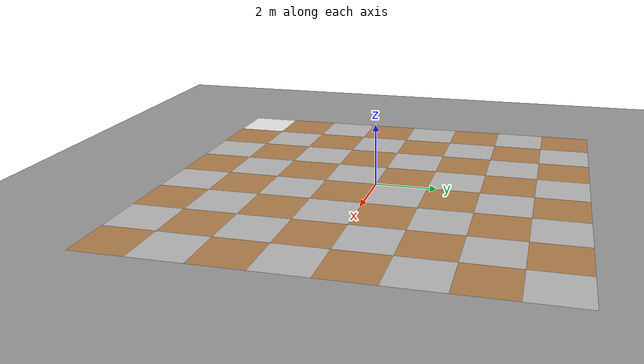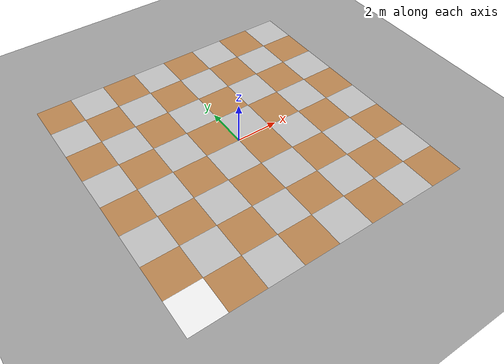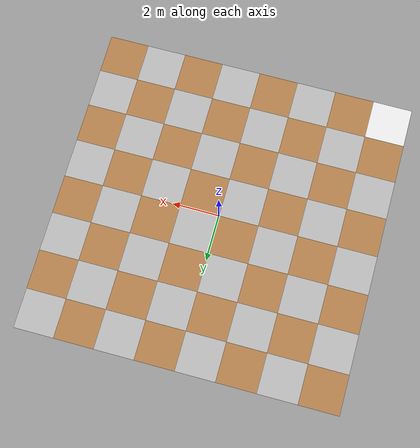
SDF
<sdf version="13">
 <world name="default">
  <scene><sky><clouds><speed>100</speed></clouds></sky><grid>false</grid></scene>
  <include><uri>model://groundPlaneWithChessBoardPattern</uri></include>
  <include><uri>model://sun</uri></include>
 </world>
</sdf>

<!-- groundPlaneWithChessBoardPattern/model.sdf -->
<sdf version="1.5">

<!-- GROUND PLANE START -->
  <model name="ground_plane">
    <static>true</static>
    <link name="ground_plane_link">
      <collision name="collision">
        <geometry>
          <plane>
            <normal>0 0 1</normal>
            <size>100 100</size>
          </plane>
        </geometry>
        <surface>
          <friction>
            <ode>
              <mu>100</mu>
              <mu2>50</mu2>
            </ode>
          </friction>
        </surface>
      </collision>
      <visual name="visual">
        <cast_shadows>false</cast_shadows>
        <geometry>
          <plane>
            <normal>0 0 1</normal>
            <size>100 100</size>
          </plane>
        </geometry>
        <material>
          <script>
            <uri>file://media/materials/scripts/gazebo.material</uri>
            <name>Gazebo/Grey</name>
          </script>
        </material>
      </visual>
    </link>
<!-- GROUND PLANE END -->

<!--CHESS BOARD PATTERN (COLUMN x=-5.90625) START-->
    <link name="1stColumn_link">
     <pose>-5.90625 0 0 0 0 0</pose>
      <collision name="White(GreyColor)">
        <pose>0 -5.90625 0.001 0 0 0</pose>
        <geometry>
          <box>
            <size>1.6875 1.6875 0</size>
          </box>
        </geometry>
      </collision>
      <visual name="visual">
        <pose>0 -5.90625 0.001 0 0 0</pose>
        <geometry>
          <box>
            <size>1.6875 1.6875 0</size>
          </box>
        </geometry>
        <material>
          <script>
            <uri>file://media/materials/scripts/gazebo.material</uri>
            <name>Gazebo/White</name>
          </script>
        </material>
      </visual>
      <collision name="Black(WoodenColor)">
        <pose>0 -4.21875 0.001 0 0 0</pose>
        <geometry>
          <box>
            <size>1.6875 1.6875 0</size>
          </box>
        </geometry>
      </collision>
      <visual name="visual">
        <pose>0 -4.21875 0.001 0 0 0</pose>
        <geometry>
          <box>
            <size>1.6875 1.6875 0</size>
          </box>
        </geometry>
        <material>
          <script>
            <uri>file://media/materials/scripts/gazebo.material</uri>
            <name>Gazebo/Wood</name>
          </script>
        </material>
      </visual>
      <collision name="White(GreyColor)">
        <pose>0 -2.53125 0.001 0 0 0</pose>
        <geometry>
          <box>
            <size>1.6875 1.6875 0</size>
          </box>
        </geometry>
      </collision>
      <visual name="visual">
        <pose>0 -2.53125 0.001 0 0 0</pose>
        <geometry>
          <box>
            <size>1.6875 1.6875 0</size>
          </box>
        </geometry>
      </visual>
      <collision name="Black(WoodenColor)">
        <pose>0 -0.84375 0.001 0 0 0</pose>
        <geometry>
          <box>
            <size>1.6875 1.6875 0</size>
          </box>
        </geometry>
      </collision>
      <visual name="visual">
        <pose>0 -0.84375 0.001 0 0 0</pose>
        <geometry>
          <box>
            <size>1.6875 1.6875 0</size>
          </box>
        </geometry>
        <material>
          <script>
            <uri>file://media/materials/scripts/gazebo.material</uri>
            <name>Gazebo/Wood</name>
          </script>
        </material>
      </visual>
      <collision name="White(GreyColor)">
        <pose>0 0.84375 0.001 0 0 0</pose>
        <geometry>
          <box>
            <size>1.6875 1.6875 0</size>
          </box>
        </geometry>
      </collision>
      <visual name="visual">
        <pose>0 0.84375 0.001 0 0 0</pose>
        <geometry>
          <box>
            <size>1.6875 1.6875 0</size>
          </box>
        </geometry>
      </visual>
      <collision name="Black(WoodenColor)">
        <pose>0 2.53125 0.001 0 0 0</pose>
        <geometry>
          <box>
            <size>1.6875 1.6875 0</size>
          </box>
        </geometry>
      </collision>
      <visual name="visual">
        <pose>0 2.53125 0.001 0 0 0</pose>
        <geometry>
          <box>
            <size>1.6875 1.6875 0</size>
          </box>
        </geometry>
        <material>
          <script>
            <uri>file://media/materials/scripts/gazebo.material</uri>
            <name>Gazebo/Wood</name>
          </script>
        </material>
      </visual>
      <collision name="White(GreyColor)">
        <pose>0 4.21875 0.001 0 0 0</pose>
        <geometry>
          <box>
            <size>1.6875 1.6875 0</size>
          </box>
        </geometry>
      </collision>
      <visual name="visual">
        <pose>0 4.21875 0.001 0 0 0</pose>
        <geometry>
          <box>
            <size>1.6875 1.6875 0</size>
          </box>
        </geometry>
      </visual>
      <collision name="Black(WoodenColor)">
        <pose>0 5.90625 0.001 0 0 0</pose>
        <geometry>
          <box>
            <size>1.6875 1.6875 0</size>
          </box>
        </geometry>
      </collision>
      <visual name="visual">
        <pose>0 5.90625 0.001 0 0 0</pose>
        <geometry>
          <box>
            <size>1.6875 1.6875 0</size>
          </box>
        </geometry>
        <material>
          <script>
            <uri>file://media/materials/scripts/gazebo.material</uri>
            <name>Gazebo/Wood</name>
          </script>
        </material>
      </visual>
    </link>
<!--CHESS BOARD PATTERN (COLUMN x=-5.90625) END-->

<!--CHESS BOARD PATTERN (COLUMN x=-4.21875) START-->
    <link name="2ndColumn_link">
     <pose>-4.21875 0 0 0 0 0</pose>
      <collision name="Black(WoodenColor)">
        <pose>0 -5.90625 0.001 0 0 0</pose>
        <geometry>
          <box>
            <size>1.6875 1.6875 0</size>
          </box>
        </geometry>
      </collision>
      <visual name="visual">
        <pose>0 -5.90625 0.001 0 0 0</pose>
        <geometry>
          <box>
            <size>1.6875 1.6875 0</size>
          </box>
        </geometry>
        <material>
          <script>
            <uri>file://media/materials/scripts/gazebo.material</uri>
            <name>Gazebo/Wood</name>
          </script>
        </material>
      </visual>
      <collision name="White(GreyColor)">
        <pose>0 -4.21875 0.001 0 0 0</pose>
        <geometry>
          <box>
            <size>1.6875 1.6875 0</size>
          </box>
        </geometry>
      </collision>
      <visual name="visual">
        <pose>0 -4.21875 0.001 0 0 0</pose>
        <geometry>
          <box>
            <size>1.6875 1.6875 0</size>
          </box>
        </geometry>
      </visual>
      <collision name="Black(WoodenColor)">
        <pose>0 -2.53125 0.001 0 0 0</pose>
        <geometry>
          <box>
            <size>1.6875 1.6875 0</size>
          </box>
        </geometry>
      </collision>
      <visual name="visual">
        <pose>0 -2.53125 0.001 0 0 0</pose>
        <geometry>
          <box>
            <size>1.6875 1.6875 0</size>
          </box>
        </geometry>
        <material>
          <script>
            <uri>file://media/materials/scripts/gazebo.material</uri>
            <name>Gazebo/Wood</name>
          </script>
        </material>
      </visual>
      <collision name="White(GreyColor)">
        <pose>0 -0.84375 0.001 0 0 0</pose>
        <geometry>
          <box>
            <size>1.6875 1.6875 0</size>
          </box>
        </geometry>
      </collision>
      <visual name="visual">
        <pose>0 -0.84375 0.001 0 0 0</pose>
        <geometry>
          <box>
            <size>1.6875 1.6875 0</size>
          </box>
        </geometry>
      </visual>
      <collision name="Black(WoodenColor)">
        <pose>0 0.84375 0.001 0 0 0</pose>
        <geometry>
          <box>
            <size>1.6875 1.6875 0</size>
          </box>
        </geometry>
      </collision>
      <visual name="visual">
        <pose>0 0.84375 0.001 0 0 0</pose>
        <geometry>
          <box>
            <size>1.6875 1.6875 0</size>
          </box>
        </geometry>
        <material>
          <script>
            <uri>file://media/materials/scripts/gazebo.material</uri>
            <name>Gazebo/Wood</name>
          </script>
        </material>
      </visual>
      <collision name="White(GreyColor)">
        <pose>0 2.53125 0.001 0 0 0</pose>
        <geometry>
          <box>
            <size>1.6875 1.6875 0</size>
          </box>
        </geometry>
      </collision>
      <visual name="visual">
        <pose>0 2.53125 0.001 0 0 0</pose>
        <geometry>
          <box>
            <size>1.6875 1.6875 0</size>
          </box>
        </geometry>
      </visual>
      <collision name="Black(WoodenColor)">
        <pose>0 4.21875 0.001 0 0 0</pose>
        <geometry>
          <box>
            <size>1.6875 1.6875 0</size>
          </box>
        </geometry>
      </collision>
      <visual name="visual">
        <pose>0 4.21875 0.001 0 0 0</pose>
        <geometry>
          <box>
            <size>1.6875 1.6875 0</size>
          </box>
        </geometry>
        <material>
          <script>
            <uri>file://media/materials/scripts/gazebo.material</uri>
            <name>Gazebo/Wood</name>
          </script>
        </material>
      </visual>
      <collision name="White(GreyColor)">
        <pose>0 5.90625 0.001 0 0 0</pose>
        <geometry>
          <box>
            <size>1.6875 1.6875 0</size>
          </box>
        </geometry>
      </collision>
      <visual name="visual">
        <pose>0 5.90625 0.001 0 0 0</pose>
        <geometry>
          <box>
            <size>1.6875 1.6875 0</size>
          </box>
        </geometry>
      </visual>
    </link>
<!--CHESS BOARD PATTERN (COLUMN x=-4.21875) END-->

<!--CHESS BOARD PATTERN (COLUMN x=-2.53125) START-->
    <link name="3rdColumn_link">
     <pose>-2.53125 0 0 0 0 0</pose>
      <collision name="White(GreyColor)">
        <pose>0 -5.90625 0.001 0 0 0</pose>
        <geometry>
          <box>
            <size>1.6875 1.6875 0</size>
          </box>
        </geometry>
      </collision>
      <visual name="visual">
        <pose>0 -5.90625 0.001 0 0 0</pose>
        <geometry>
          <box>
            <size>1.6875 1.6875 0</size>
          </box>
        </geometry>
      </visual>
      <collision name="Black(WoodenColor)">
        <pose>0 -4.21875 0.001 0 0 0</pose>
        <geometry>
          <box>
            <size>1.6875 1.6875 0</size>
          </box>
        </geometry>
      </collision>
      <visual name="visual">
        <pose>0 -4.21875 0.001 0 0 0</pose>
        <geometry>
          <box>
            <size>1.6875 1.6875 0</size>
          </box>
        </geometry>
        <material>
          <script>
            <uri>file://media/materials/scripts/gazebo.material</uri>
            <name>Gazebo/Wood</name>
          </script>
        </material>
      </visual>
      <collision name="White(GreyColor)">
        <pose>0 -2.53125 0.001 0 0 0</pose>
        <geometry>
          <box>
            <size>1.6875 1.6875 0</size>
          </box>
        </geometry>
      </collision>
      <visual name="visual">
        <pose>0 -2.53125 0.001 0 0 0</pose>
        <geometry>
          <box>
            <size>1.6875 1.6875 0</size>
          </box>
        </geometry>
      </visual>
      <collision name="Black(WoodenColor)">
        <pose>0 -0.84375 0.001 0 0 0</pose>
        <geometry>
          <box>
            <size>1.6875 1.6875 0</size>
          </box>
        </geometry>
      </collision>
      <visual name="visual">
        <pose>0 -0.84375 0.001 0 0 0</pose>
        <geometry>
          <box>
            <size>1.6875 1.6875 0</size>
          </box>
        </geometry>
        <material>
          <script>
            <uri>file://media/materials/scripts/gazebo.material</uri>
            <name>Gazebo/Wood</name>
          </script>
        </material>
      </visual>
      <collision name="White(GreyColor)">
        <pose>0 0.84375 0.001 0 0 0</pose>
        <geometry>
          <box>
            <size>1.6875 1.6875 0</size>
          </box>
        </geometry>
      </collision>
      <visual name="visual">
        <pose>0 0.84375 0.001 0 0 0</pose>
        <geometry>
          <box>
            <size>1.6875 1.6875 0</size>
          </box>
        </geometry>
      </visual>
      <collision name="Black(WoodenColor)">
        <pose>0 2.53125 0.001 0 0 0</pose>
        <geometry>
          <box>
            <size>1.6875 1.6875 0</size>
          </box>
        </geometry>
      </collision>
      <visual name="visual">
        <pose>0 2.53125 0.001 0 0 0</pose>
        <geometry>
          <box>
            <size>1.6875 1.6875 0</size>
          </box>
        </geometry>
        <material>
          <script>
            <uri>file://media/materials/scripts/gazebo.material</uri>
            <name>Gazebo/Wood</name>
          </script>
        </material>
      </visual>
      <collision name="White(GreyColor)">
        <pose>0 4.21875 0.001 0 0 0</pose>
        <geometry>
          <box>
            <size>1.6875 1.6875 0</size>
          </box>
        </geometry>
      </collision>
      <visual name="visual">
        <pose>0 4.21875 0.001 0 0 0</pose>
        <geometry>
          <box>
            <size>1.6875 1.6875 0</size>
          </box>
        </geometry>
      </visual>
      <collision name="Black(WoodenColor)">
        <pose>0 5.90625 0.001 0 0 0</pose>
        <geometry>
          <box>
            <size>1.6875 1.6875 0</size>
          </box>
        </geometry>
      </collision>
      <visual name="visual">
        <pose>0 5.90625 0.001 0 0 0</pose>
        <geometry>
          <box>
            <size>1.6875 1.6875 0</size>
          </box>
        </geometry>
        <material>
          <script>
            <uri>file://media/materials/scripts/gazebo.material</uri>
            <name>Gazebo/Wood</name>
          </script>
        </material>
      </visual>
    </link>
<!--CHESS BOARD PATTERN (COLUMN x=-2.53125) END-->

<!--CHESS BOARD PATTERN (COLUMN x=-0.84375) START-->
    <link name="4thColumn_link">
     <pose>-0.84375 0 0 0 0 0</pose>
      <collision name="Black(WoodenColor)">
        <pose>0 -5.90625 0.001 0 0 0</pose>
        <geometry>
          <box>
            <size>1.6875 1.6875 0</size>
          </box>
        </geometry>
      </collision>
      <visual name="visual">
        <pose>0 -5.90625 0.001 0 0 0</pose>
        <geometry>
          <box>
            <size>1.6875 1.6875 0</size>
          </box>
        </geometry>
        <material>
          <script>
            <uri>file://media/materials/scripts/gazebo.material</uri>
            <name>Gazebo/Wood</name>
          </script>
        </material>
      </visual>
      <collision name="White(GreyColor)">
        <pose>0 -4.21875 0.001 0 0 0</pose>
        <geometry>
          <box>
            <size>1.6875 1.6875 0</size>
          </box>
        </geometry>
      </collision>
      <visual name="visual">
        <pose>0 -4.21875 0.001 0 0 0</pose>
        <geometry>
          <box>
            <size>1.6875 1.6875 0</size>
          </box>
        </geometry>
      </visual>
      <collision name="Black(WoodenColor)">
        <pose>0 -2.53125 0.001 0 0 0</pose>
        <geometry>
          <box>
            <size>1.6875 1.6875 0</size>
          </box>
        </geometry>
      </collision>
      <visual name="visual">
        <pose>0 -2.53125 0.001 0 0 0</pose>
        <geometry>
          <box>
            <size>1.6875 1.6875 0</size>
          </box>
        </geometry>
        <material>
          <script>
            <uri>file://media/materials/scripts/gazebo.material</uri>
            <name>Gazebo/Wood</name>
          </script>
        </material>
      </visual>
      <collision name="White(GreyColor)">
        <pose>0 -0.84375 0.001 0 0 0</pose>
        <geometry>
          <box>
            <size>1.6875 1.6875 0</size>
          </box>
        </geometry>
      </collision>
      <visual name="visual">
        <pose>0 -0.84375 0.001 0 0 0</pose>
        <geometry>
          <box>
            <size>1.6875 1.6875 0</size>
          </box>
        </geometry>
      </visual>
      <collision name="Black(WoodenColor)">
        <pose>0 0.84375 0.001 0 0 0</pose>
        <geometry>
          <box>
            <size>1.6875 1.6875 0</size>
          </box>
        </geometry>
      </collision>
      <visual name="visual">
        <pose>0 0.84375 0.001 0 0 0</pose>
        <geometry>
          <box>
            <size>1.6875 1.6875 0</size>
          </box>
        </geometry>
        <material>
          <script>
            <uri>file://media/materials/scripts/gazebo.material</uri>
            <name>Gazebo/Wood</name>
          </script>
        </material>
      </visual>
      <collision name="White(GreyColor)">
        <pose>0 2.53125 0.001 0 0 0</pose>
        <geometry>
          <box>
            <size>1.6875 1.6875 0</size>
          </box>
        </geometry>
      </collision>
      <visual name="visual">
        <pose>0 2.53125 0.001 0 0 0</pose>
        <geometry>
          <box>
            <size>1.6875 1.6875 0</size>
          </box>
        </geometry>
      </visual>
      <collision name="Black(WoodenColor)">
        <pose>0 4.21875 0.001 0 0 0</pose>
        <geometry>
          <box>
            <size>1.6875 1.6875 0</size>
          </box>
        </geometry>
      </collision>
      <visual name="visual">
        <pose>0 4.21875 0.001 0 0 0</pose>
        <geometry>
          <box>
            <size>1.6875 1.6875 0</size>
          </box>
        </geometry>
        <material>
          <script>
            <uri>file://media/materials/scripts/gazebo.material</uri>
            <name>Gazebo/Wood</name>
          </script>
        </material>
      </visual>
      <collision name="White(GreyColor)">
        <pose>0 5.90625 0.001 0 0 0</pose>
        <geometry>
          <box>
            <size>1.6875 1.6875 0</size>
          </box>
        </geometry>
      </collision>
      <visual name="visual">
        <pose>0 5.90625 0.001 0 0 0</pose>
        <geometry>
          <box>
            <size>1.6875 1.6875 0</size>
          </box>
        </geometry>
      </visual>
    </link>
<!--CHESS BOARD PATTERN (COLUMN x=-0.84375) END-->

<!--CHESS BOARD PATTERN (COLUMN x=0.84375) START-->
    <link name="5thColumn_link">
     <pose>0.84375 0 0 0 0 0</pose>
      <collision name="White(GreyColor)">
        <pose>0 -5.90625 0.001 0 0 0</pose>
        <geometry>
          <box>
            <size>1.6875 1.6875 0</size>
          </box>
        </geometry>
      </collision>
      <visual name="visual">
        <pose>0 -5.90625 0.001 0 0 0</pose>
        <geometry>
          <box>
            <size>1.6875 1.6875 0</size>
          </box>
        </geometry>
      </visual>
      <collision name="Black(WoodenColor)">
        <pose>0 -4.21875 0.001 0 0 0</pose>
        <geometry>
          <box>
            <size>1.6875 1.6875 0</size>
          </box>
        </geometry>
      </collision>
      <visual name="visual">
        <pose>0 -4.21875 0.001 0 0 0</pose>
        <geometry>
          <box>
            <size>1.6875 1.6875 0</size>
          </box>
        </geometry>
        <material>
          <script>
            <uri>file://media/materials/scripts/gazebo.material</uri>
            <name>Gazebo/Wood</name>
          </script>
        </material>
      </visual>
      <collision name="White(GreyColor)">
        <pose>0 -2.53125 0.001 0 0 0</pose>
        <geometry>
          <box>
            <size>1.6875 1.6875 0</size>
          </box>
        </geometry>
      </collision>
      <visual name="visual">
        <pose>0 -2.53125 0.001 0 0 0</pose>
        <geometry>
          <box>
            <size>1.6875 1.6875 0</size>
          </box>
        </geometry>
      </visual>
      <collision name="Black(WoodenColor)">
        <pose>0 -0.84375 0.001 0 0 0</pose>
        <geometry>
          <box>
            <size>1.6875 1.6875 0</size>
          </box>
        </geometry>
      </collision>
      <visual name="visual">
        <pose>0 -0.84375 0.001 0 0 0</pose>
        <geometry>
          <box>
            <size>1.6875 1.6875 0</size>
          </box>
        </geometry>
        <material>
          <script>
            <uri>file://media/materials/scripts/gazebo.material</uri>
            <name>Gazebo/Wood</name>
          </script>
        </material>
      </visual>
      <collision name="White(GreyColor)">
        <pose>0 0.84375 0.001 0 0 0</pose>
        <geometry>
          <box>
            <size>1.6875 1.6875 0</size>
          </box>
        </geometry>
      </collision>
      <visual name="visual">
        <pose>0 0.84375 0.001 0 0 0</pose>
        <geometry>
          <box>
            <size>1.6875 1.6875 0</size>
          </box>
        </geometry>
      </visual>
      <collision name="Black(WoodenColor)">
        <pose>0 2.53125 0.001 0 0 0</pose>
        <geometry>
          <box>
            <size>1.6875 1.6875 0</size>
          </box>
        </geometry>
      </collision>
      <visual name="visual">
        <pose>0 2.53125 0.001 0 0 0</pose>
        <geometry>
          <box>
            <size>1.6875 1.6875 0</size>
          </box>
        </geometry>
        <material>
          <script>
            <uri>file://media/materials/scripts/gazebo.material</uri>
            <name>Gazebo/Wood</name>
          </script>
        </material>
      </visual>
      <collision name="White(GreyColor)">
        <pose>0 4.21875 0.001 0 0 0</pose>
        <geometry>
          <box>
            <size>1.6875 1.6875 0</size>
          </box>
        </geometry>
      </collision>
      <visual name="visual">
        <pose>0 4.21875 0.001 0 0 0</pose>
        <geometry>
          <box>
            <size>1.6875 1.6875 0</size>
          </box>
        </geometry>
      </visual>
      <collision name="Black(WoodenColor)">
        <pose>0 5.90625 0.001 0 0 0</pose>
        <geometry>
          <box>
            <size>1.6875 1.6875 0</size>
          </box>
        </geometry>
      </collision>
      <visual name="visual">
        <pose>0 5.90625 0.001 0 0 0</pose>
        <geometry>
          <box>
            <size>1.6875 1.6875 0</size>
          </box>
        </geometry>
        <material>
          <script>
            <uri>file://media/materials/scripts/gazebo.material</uri>
            <name>Gazebo/Wood</name>
          </script>
        </material>
      </visual>
    </link>
<!--CHESS BOARD PATTERN (COLUMN x=0.84375) END-->

<!--CHESS BOARD PATTERN (COLUMN x=2.53125) START-->
    <link name="6thColumn_link">
     <pose>2.53125 0 0 0 0 0</pose>
      <collision name="Black(WoodenColor)">
        <pose>0 -5.90625 0.001 0 0 0</pose>
        <geometry>
          <box>
            <size>1.6875 1.6875 0</size>
          </box>
        </geometry>
      </collision>
      <visual name="visual">
        <pose>0 -5.90625 0.001 0 0 0</pose>
        <geometry>
          <box>
            <size>1.6875 1.6875 0</size>
          </box>
        </geometry>
        <material>
          <script>
            <uri>file://media/materials/scripts/gazebo.material</uri>
            <name>Gazebo/Wood</name>
          </script>
        </material>
      </visual>
      <collision name="White(GreyColor)">
        <pose>0 -4.21875 0.001 0 0 0</pose>
        <geometry>
          <box>
            <size>1.6875 1.6875 0</size>
          </box>
        </geometry>
      </collision>
      <visual name="visual">
        <pose>0 -4.21875 0.001 0 0 0</pose>
        <geometry>
          <box>
            <size>1.6875 1.6875 0</size>
          </box>
        </geometry>
      </visual>
      <collision name="Black(WoodenColor)">
        <pose>0 -2.53125 0.001 0 0 0</pose>
        <geometry>
          <box>
            <size>1.6875 1.6875 0</size>
          </box>
        </geometry>
      </collision>
      <visual name="visual">
        <pose>0 -2.53125 0.001 0 0 0</pose>
        <geometry>
          <box>
            <size>1.6875 1.6875 0</size>
          </box>
        </geometry>
        <material>
          <script>
            <uri>file://media/materials/scripts/gazebo.material</uri>
            <name>Gazebo/Wood</name>
          </script>
        </material>
      </visual>
      <collision name="White(GreyColor)">
        <pose>0 -0.84375 0.001 0 0 0</pose>
        <geometry>
          <box>
            <size>1.6875 1.6875 0</size>
          </box>
        </geometry>
      </collision>
      <visual name="visual">
        <pose>0 -0.84375 0.001 0 0 0</pose>
        <geometry>
          <box>
            <size>1.6875 1.6875 0</size>
          </box>
        </geometry>
      </visual>
      <collision name="Black(WoodenColor)">
        <pose>0 0.84375 0.001 0 0 0</pose>
        <geometry>
          <box>
            <size>1.6875 1.6875 0</size>
          </box>
        </geometry>
      </collision>
      <visual name="visual">
        <pose>0 0.84375 0.001 0 0 0</pose>
        <geometry>
          <box>
            <size>1.6875 1.6875 0</size>
          </box>
        </geometry>
        <material>
          <script>
            <uri>file://media/materials/scripts/gazebo.material</uri>
            <name>Gazebo/Wood</name>
          </script>
        </material>
      </visual>
      <collision name="White(GreyColor)">
        <pose>0 2.53125 0.001 0 0 0</pose>
        <geometry>
          <box>
            <size>1.6875 1.6875 0</size>
          </box>
        </geometry>
      </collision>
      <visual name="visual">
        <pose>0 2.53125 0.001 0 0 0</pose>
        <geometry>
          <box>
            <size>1.6875 1.6875 0</size>
          </box>
        </geometry>
      </visual>
      <collision name="Black(WoodenColor)">
        <pose>0 4.21875 0.001 0 0 0</pose>
        <geometry>
          <box>
            <size>1.6875 1.6875 0</size>
          </box>
        </geometry>
      </collision>
      <visual name="visual">
        <pose>0 4.21875 0.001 0 0 0</pose>
        <geometry>
          <box>
            <size>1.6875 1.6875 0</size>
          </box>
        </geometry>
        <material>
          <script>
            <uri>file://media/materials/scripts/gazebo.material</uri>
            <name>Gazebo/Wood</name>
          </script>
        </material>
      </visual>
      <collision name="White(GreyColor)">
        <pose>0 5.90625 0.001 0 0 0</pose>
        <geometry>
          <box>
            <size>1.6875 1.6875 0</size>
          </box>
        </geometry>
      </collision>
      <visual name="visual">
        <pose>0 5.90625 0.001 0 0 0</pose>
        <geometry>
          <box>
            <size>1.6875 1.6875 0</size>
          </box>
        </geometry>
      </visual>
    </link>
<!--CHESS BOARD PATTERN (COLUMN x=2.53125) END-->

<!--CHESS BOARD PATTERN (COLUMN x=4.21875) START-->
    <link name="7thColumn_link">
     <pose>4.21875 0 0 0 0 0</pose>
      <collision name="White(GreyColor)">
        <pose>0 -5.90625 0.001 0 0 0</pose>
        <geometry>
          <box>
            <size>1.6875 1.6875 0</size>
          </box>
        </geometry>
      </collision>
      <visual name="visual">
        <pose>0 -5.90625 0.001 0 0 0</pose>
        <geometry>
          <box>
            <size>1.6875 1.6875 0</size>
          </box>
        </geometry>
      </visual>
      <collision name="Black(WoodenColor)">
        <pose>0 -4.21875 0.001 0 0 0</pose>
        <geometry>
          <box>
            <size>1.6875 1.6875 0</size>
          </box>
        </geometry>
      </collision>
      <visual name="visual">
        <pose>0 -4.21875 0.001 0 0 0</pose>
        <geometry>
          <box>
            <size>1.6875 1.6875 0</size>
          </box>
        </geometry>
        <material>
          <script>
            <uri>file://media/materials/scripts/gazebo.material</uri>
            <name>Gazebo/Wood</name>
          </script>
        </material>
      </visual>
      <collision name="White(GreyColor)">
        <pose>0 -2.53125 0.001 0 0 0</pose>
        <geometry>
          <box>
            <size>1.6875 1.6875 0</size>
          </box>
        </geometry>
      </collision>
      <visual name="visual">
        <pose>0 -2.53125 0.001 0 0 0</pose>
        <geometry>
          <box>
            <size>1.6875 1.6875 0</size>
          </box>
        </geometry>
      </visual>
      <collision name="Black(WoodenColor)">
        <pose>0 -0.84375 0.001 0 0 0</pose>
        <geometry>
          <box>
            <size>1.6875 1.6875 0</size>
          </box>
        </geometry>
      </collision>
      <visual name="visual">
        <pose>0 -0.84375 0.001 0 0 0</pose>
        <geometry>
          <box>
            <size>1.6875 1.6875 0</size>
          </box>
        </geometry>
        <material>
          <script>
            <uri>file://media/materials/scripts/gazebo.material</uri>
            <name>Gazebo/Wood</name>
          </script>
        </material>
      </visual>
      <collision name="White(GreyColor)">
        <pose>0 0.84375 0.001 0 0 0</pose>
        <geometry>
          <box>
            <size>1.6875 1.6875 0</size>
          </box>
        </geometry>
      </collision>
      <visual name="visual">
        <pose>0 0.84375 0.001 0 0 0</pose>
        <geometry>
          <box>
            <size>1.6875 1.6875 0</size>
          </box>
        </geometry>
      </visual>
      <collision name="Black(WoodenColor)">
        <pose>0 2.53125 0.001 0 0 0</pose>
        <geometry>
          <box>
            <size>1.6875 1.6875 0</size>
          </box>
        </geometry>
      </collision>
      <visual name="visual">
        <pose>0 2.53125 0.001 0 0 0</pose>
        <geometry>
          <box>
            <size>1.6875 1.6875 0</size>
          </box>
        </geometry>
        <material>
          <script>
            <uri>file://media/materials/scripts/gazebo.material</uri>
            <name>Gazebo/Wood</name>
          </script>
        </material>
      </visual>
      <collision name="White(GreyColor)">
        <pose>0 4.21875 0.001 0 0 0</pose>
        <geometry>
          <box>
            <size>1.6875 1.6875 0</size>
          </box>
        </geometry>
      </collision>
      <visual name="visual">
        <pose>0 4.21875 0.001 0 0 0</pose>
        <geometry>
          <box>
            <size>1.6875 1.6875 0</size>
          </box>
        </geometry>
      </visual>
      <collision name="Black(WoodenColor)">
        <pose>0 5.90625 0.001 0 0 0</pose>
        <geometry>
          <box>
            <size>1.6875 1.6875 0</size>
          </box>
        </geometry>
      </collision>
      <visual name="visual">
        <pose>0 5.90625 0.001 0 0 0</pose>
        <geometry>
          <box>
            <size>1.6875 1.6875 0</size>
          </box>
        </geometry>
        <material>
          <script>
            <uri>file://media/materials/scripts/gazebo.material</uri>
            <name>Gazebo/Wood</name>
          </script>
        </material>
      </visual>
    </link>
<!--CHESS BOARD PATTERN (COLUMN x=4.21875) END-->

<!--CHESS BOARD PATTERN (COLUMN x=5.90625) START-->
    <link name="8thColumn_link">
     <pose>5.90625 0 0 0 0 0</pose>
      <collision name="Black(WoodenColor)">
        <pose>0 -5.90625 0.001 0 0 0</pose>
        <geometry>
          <box>
            <size>1.6875 1.6875 0</size>
          </box>
        </geometry>
      </collision>
      <visual name="visual">
        <pose>0 -5.90625 0.001 0 0 0</pose>
        <geometry>
          <box>
            <size>1.6875 1.6875 0</size>
          </box>
        </geometry>
        <material>
          <script>
            <uri>file://media/materials/scripts/gazebo.material</uri>
            <name>Gazebo/Wood</name>
          </script>
        </material>
      </visual>
      <collision name="White(GreyColor)">
        <pose>0 -4.21875 0.001 0 0 0</pose>
        <geometry>
          <box>
            <size>1.6875 1.6875 0</size>
          </box>
        </geometry>
      </collision>
      <visual name="visual">
        <pose>0 -4.21875 0.001 0 0 0</pose>
        <geometry>
          <box>
            <size>1.6875 1.6875 0</size>
          </box>
        </geometry>
      </visual>
      <collision name="Black(WoodenColor)">
        <pose>0 -2.53125 0.001 0 0 0</pose>
        <geometry>
          <box>
            <size>1.6875 1.6875 0</size>
          </box>
        </geometry>
      </collision>
      <visual name="visual">
        <pose>0 -2.53125 0.001 0 0 0</pose>
        <geometry>
          <box>
            <size>1.6875 1.6875 0</size>
          </box>
        </geometry>
        <material>
          <script>
            <uri>file://media/materials/scripts/gazebo.material</uri>
            <name>Gazebo/Wood</name>
          </script>
        </material>
      </visual>
      <collision name="White(GreyColor)">
        <pose>0 -0.84375 0.001 0 0 0</pose>
        <geometry>
          <box>
            <size>1.6875 1.6875 0</size>
          </box>
        </geometry>
      </collision>
      <visual name="visual">
        <pose>0 -0.84375 0.001 0 0 0</pose>
        <geometry>
          <box>
            <size>1.6875 1.6875 0</size>
          </box>
        </geometry>
      </visual>
      <collision name="Black(WoodenColor)">
        <pose>0 0.84375 0.001 0 0 0</pose>
        <geometry>
          <box>
            <size>1.6875 1.6875 0</size>
          </box>
        </geometry>
      </collision>
      <visual name="visual">
        <pose>0 0.84375 0.001 0 0 0</pose>
        <geometry>
          <box>
            <size>1.6875 1.6875 0</size>
          </box>
        </geometry>
        <material>
          <script>
            <uri>file://media/materials/scripts/gazebo.material</uri>
            <name>Gazebo/Wood</name>
          </script>
        </material>
      </visual>
      <collision name="White(GreyColor)">
        <pose>0 2.53125 0.001 0 0 0</pose>
        <geometry>
          <box>
            <size>1.6875 1.6875 0</size>
          </box>
        </geometry>
      </collision>
      <visual name="visual">
        <pose>0 2.53125 0.001 0 0 0</pose>
        <geometry>
          <box>
            <size>1.6875 1.6875 0</size>
          </box>
        </geometry>
      </visual>
      <collision name="Black(WoodenColor)">
        <pose>0 4.21875 0.001 0 0 0</pose>
        <geometry>
          <box>
            <size>1.6875 1.6875 0</size>
          </box>
        </geometry>
      </collision>
      <visual name="visual">
        <pose>0 4.21875 0.001 0 0 0</pose>
        <geometry>
          <box>
            <size>1.6875 1.6875 0</size>
          </box>
        </geometry>
        <material>
          <script>
            <uri>file://media/materials/scripts/gazebo.material</uri>
            <name>Gazebo/Wood</name>
          </script>
        </material>
      </visual>
      <collision name="White(GreyColor)">
        <pose>0 5.90625 0.001 0 0 0</pose>
        <geometry>
          <box>
            <size>1.6875 1.6875 0</size>
          </box>
        </geometry>
      </collision>
      <visual name="visual">
        <pose>0 5.90625 0.001 0 0 0</pose>
        <geometry>
          <box>
            <size>1.6875 1.6875 0</size>
          </box>
        </geometry>
      </visual>
    </link>
<!--CHESS BOARD PATTERN (COLUMN x=5.90625) END-->

  </model>
</sdf>
